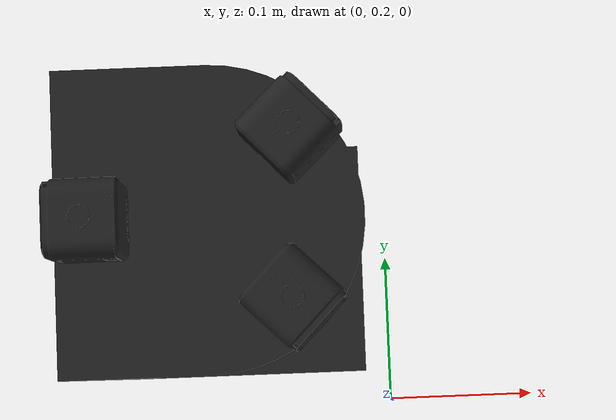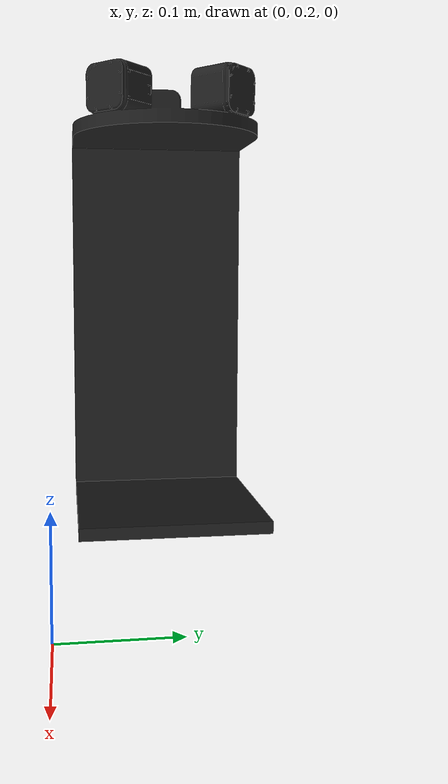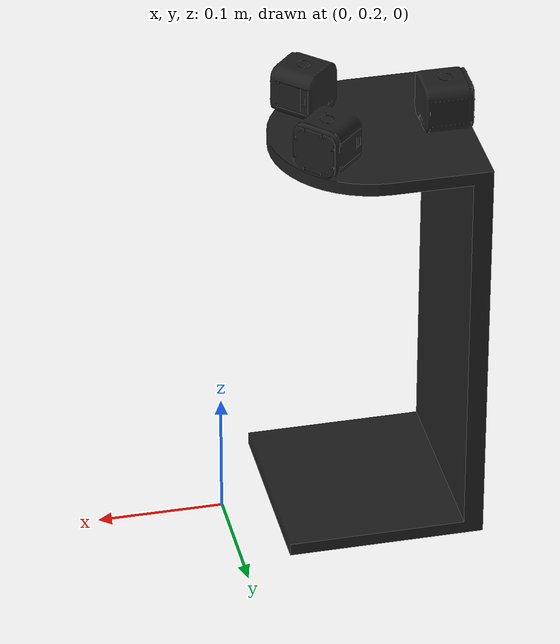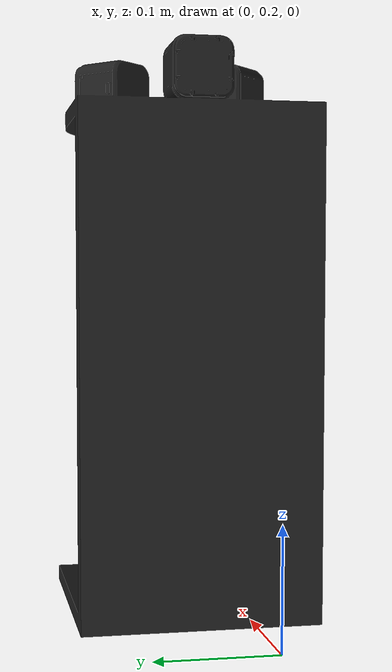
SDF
<?xml version="1.0"?>
<sdf version='1.0'>
    <model name="mount">
        <link name="mount">
            <pose>0.0 0.0 0.0 1.570796 0 3.14159 </pose>
            <inertial>
                <mass>0.020</mass>
		<inertia ixx="0.4" ixy="0.0" ixz="0.0" iyy="0.4" iyz="0.0" izz="0.2"/>
            </inertial>
            <visual name="visual">
            <geometry>
                <mesh>
                    <uri>model://mount/meshes/mount.dae</uri>
                    <scale>0.001 0.001 0.001</scale>
                </mesh>
            </geometry>
            <material>
              <script>
                <name>Gazebo/FlatBlack</name>
              </script>
            </material>
            </visual>
            <collision name="collision">
                <geometry>
                    <mesh>
                        <uri>model://mount/meshes/mount.dae</uri>
                        <scale>0.001 0.001 0.001</scale>
                    </mesh>
                </geometry>
            </collision>
        </link>
    </model>
</sdf>
